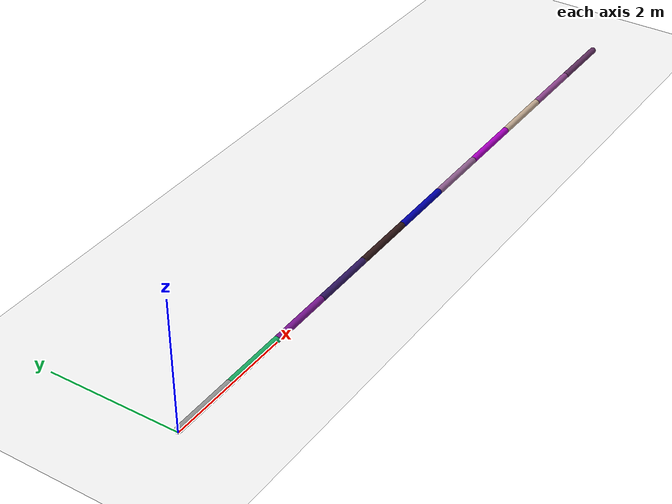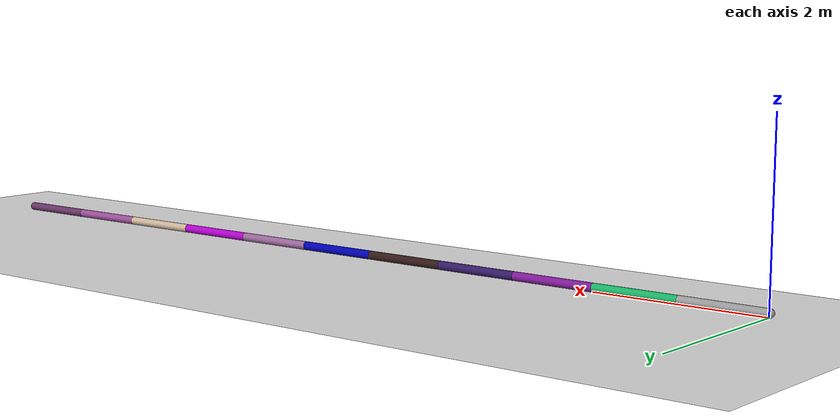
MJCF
<mujoco model="morphology">
    <default>
        <default class="/" />
    </default>
    <asset>
        <texture name="texplane" type="2d" builtin="checker" rgb1="0.1 0.2 0.3" rgb2="0.2 0.3 0.4"
            width="300" height="300" />
        <material name="MatPlane" class="/" texture="texplane" texrepeat="20 20" />
    </asset>
    <worldbody>
        <light name="//unnamed_light_0" class="/" directional="true" pos="0 0 1.5" dir="0 0 -1.3"
            cutoff="1e+02" exponent="1" diffuse="1 1 1" specular="0.1 0.1 0.1" />
        <geom name="ground" class="/" type="plane" size="15 15 0.5" material="MatPlane"
            rgba="1 1 1 1" />
        <body name="root" pos="0 0 0.05">
            <geom name="//unnamed_geom_1" class="/" type="capsule" size="0.05" rgba="0.6 0.6 0.6 1"
                fromto="0 0 0 1 0 0" />
            <joint name="rootx" class="/" type="slide" axis="1 0 0" limited="false" stiffness="100"
                armature="0.4" damping="0" />
            <joint name="rootz" class="/" type="slide" axis="0 0 1" limited="false" stiffness="100"
                armature="0.4" damping="0" />
            <joint name="rooty" class="/" type="hinge" axis="0 1 0" limited="false" stiffness="100"
                armature="0.4" damping="0" />
            <body name="//unnamed_body_1" pos="1 0 0">
                <joint name="joint1" class="/" type="hinge" pos="0 0 0" axis="0 1 0" limited="true"
                    range="-40 40" armature="0.4" />
                <geom name="//unnamed_geom_2" class="/" type="capsule" size="0.05"
                    rgba="0.1 0.7 0.4 1" fromto="0 0 0 1 0 0" />
                <body name="//unnamed_body_2" pos="1 0 0">
                    <joint name="joint2" class="/" type="hinge" pos="0 0 0" axis="0 1 0"
                        limited="true" range="-40 40" armature="0.4" />
                    <geom name="//unnamed_geom_3" class="/" type="capsule" size="0.05"
                        rgba="0.5 0.1 0.6 1" fromto="0 0 0 1 0 0" />
                    <body name="//unnamed_body_3" pos="1 0 0">
                        <joint name="joint3" class="/" type="hinge" pos="0 0 0" axis="0 1 0"
                            limited="true" range="-40 40" armature="0.4" />
                        <geom name="//unnamed_geom_4" class="/" type="capsule" size="0.05"
                            rgba="0.2 0.1 0.4 1" fromto="0 0 0 1 0 0" />
                        <body name="//unnamed_body_4" pos="1 0 0">
                            <joint name="joint4" class="/" type="hinge" pos="0 0 0" axis="0 1 0"
                                limited="true" range="-40 40" armature="0.4" />
                            <geom name="//unnamed_geom_5" class="/" type="capsule" size="0.05"
                                rgba="0.2 0.1 0.1 1" fromto="0 0 0 1 0 0" />
                            <body name="//unnamed_body_5" pos="1 0 0">
                                <joint name="joint5" class="/" type="hinge" pos="0 0 0" axis="0 1 0"
                                    limited="true" range="-40 40" armature="0.4" />
                                <geom name="//unnamed_geom_6" class="/" type="capsule" size="0.05"
                                    rgba="0 0 0.7 1" fromto="0 0 0 1 0 0" />
                                <body name="//unnamed_body_6" pos="1 0 0">
                                    <joint name="joint6" class="/" type="hinge" pos="0 0 0"
                                        axis="0 1 0" limited="true" range="-40 40" armature="0.4" />
                                    <geom name="//unnamed_geom_7" class="/" type="capsule"
                                        size="0.05" rgba="0.6 0.4 0.6 1" fromto="0 0 0 1 0 0" />
                                    <body name="//unnamed_body_7" pos="1 0 0">
                                        <joint name="joint7" class="/" type="hinge" pos="0 0 0"
                                            axis="0 1 0" limited="true" range="-40 40"
                                            armature="0.4" />
                                        <geom name="//unnamed_geom_8" class="/" type="capsule"
                                            size="0.05" rgba="0.7 0 0.8 1" fromto="0 0 0 1 0 0" />
                                        <body name="//unnamed_body_8" pos="1 0 0">
                                            <joint name="joint8" class="/" type="hinge" pos="0 0 0"
                                                axis="0 1 0" limited="true" range="-40 40"
                                                armature="0.4" />
                                            <geom name="//unnamed_geom_9" class="/" type="capsule"
                                                size="0.05" rgba="0.8 0.7 0.6 1"
                                                fromto="0 0 0 1 0 0" />
                                            <body name="//unnamed_body_9" pos="1 0 0">
                                                <joint name="joint9" class="/" type="hinge"
                                                    pos="0 0 0" axis="0 1 0" limited="true"
                                                    range="-40 40" armature="0.4" />
                                                <geom name="//unnamed_geom_10" class="/"
                                                    type="capsule" size="0.05" rgba="0.6 0.3 0.6 1"
                                                    fromto="0 0 0 1 0 0" />
                                                <body name="//unnamed_body_10" pos="1 0 0">
                                                    <joint name="joint10" class="/" type="hinge"
                                                        pos="0 0 0" axis="0 1 0" limited="true"
                                                        range="-40 40" armature="0.4" />
                                                    <geom name="//unnamed_geom_11" class="/"
                                                        type="capsule" size="0.05"
                                                        rgba="0.4 0.2 0.4 1" fromto="0 0 0 1 0 0" />
                                                </body>
                                            </body>
                                        </body>
                                    </body>
                                </body>
                            </body>
                        </body>
                    </body>
                </body>
            </body>
        </body>
    </worldbody>
    <actuator>
        <motor name="//unnamed_actuator_0" class="/" ctrllimited="true" ctrlrange="-1 1"
            gear="2e+02" joint="joint1" />
        <motor name="//unnamed_actuator_1" class="/" ctrllimited="true" ctrlrange="-1 1"
            gear="2e+02" joint="joint2" />
        <motor name="//unnamed_actuator_2" class="/" ctrllimited="true" ctrlrange="-1 1"
            gear="2e+02" joint="joint3" />
        <motor name="//unnamed_actuator_3" class="/" ctrllimited="true" ctrlrange="-1 1"
            gear="2e+02" joint="joint4" />
        <motor name="//unnamed_actuator_4" class="/" ctrllimited="true" ctrlrange="-1 1"
            gear="2e+02" joint="joint5" />
        <motor name="//unnamed_actuator_5" class="/" ctrllimited="true" ctrlrange="-1 1"
            gear="2e+02" joint="joint6" />
        <motor name="//unnamed_actuator_6" class="/" ctrllimited="true" ctrlrange="-1 1"
            gear="2e+02" joint="joint7" />
        <motor name="//unnamed_actuator_7" class="/" ctrllimited="true" ctrlrange="-1 1"
            gear="2e+02" joint="joint8" />
        <motor name="//unnamed_actuator_8" class="/" ctrllimited="true" ctrlrange="-1 1"
            gear="2e+02" joint="joint9" />
        <motor name="//unnamed_actuator_9" class="/" ctrllimited="true" ctrlrange="-1 1"
            gear="2e+02" joint="joint10" />
    </actuator>
</mujoco>
